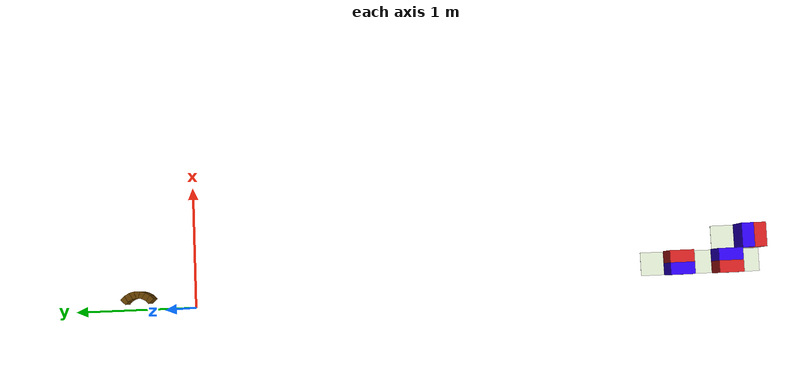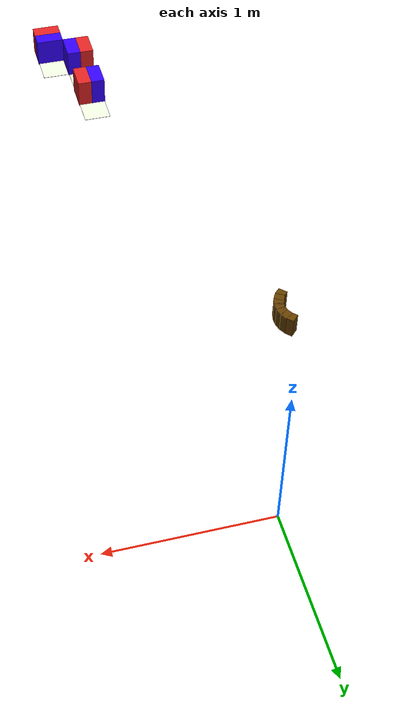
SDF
<sdf version="1.9">
 <world name="robocon_2027">
  <model name="robocon_2027_field">
   <static>true</static>
   <link name="sky_grid_0_3">
    <pose>0.200000 -4.625000 0.006000 0.000000 0.000000 0.000000</pose>
    <visual name="visual">
     <geometry><box><size>0.192000 0.192000 0.002000</size></box></geometry>
     <cast_shadows>false</cast_shadows>
     <material>
      <ambient>0.921569 0.960784 0.862745 1</ambient>
      <diffuse>0.921569 0.960784 0.862745 1</diffuse>
      <specular>0.08 0.08 0.08 1</specular>
      <double_sided>true</double_sided>
     </material>
    </visual>
   </link>
   <link name="sky_grid_0_4">
    <pose>0.400000 -4.625000 0.006000 0.000000 0.000000 0.000000</pose>
    <visual name="visual">
     <geometry><box><size>0.192000 0.192000 0.002000</size></box></geometry>
     <cast_shadows>false</cast_shadows>
     <material>
      <ambient>0.803922 0.901961 0.745098 1</ambient>
      <diffuse>0.803922 0.901961 0.745098 1</diffuse>
      <specular>0.08 0.08 0.08 1</specular>
      <double_sided>true</double_sided>
     </material>
    </visual>
   </link>
   <link name="sky_grid_1_3">
    <pose>0.200000 -4.425000 0.006000 0.000000 0.000000 0.000000</pose>
    <visual name="visual">
     <geometry><box><size>0.192000 0.192000 0.002000</size></box></geometry>
     <cast_shadows>false</cast_shadows>
     <material>
      <ambient>0.803922 0.901961 0.745098 1</ambient>
      <diffuse>0.803922 0.901961 0.745098 1</diffuse>
      <specular>0.08 0.08 0.08 1</specular>
      <double_sided>true</double_sided>
     </material>
    </visual>
   </link>
   <link name="sky_grid_1_4">
    <pose>0.400000 -4.425000 0.006000 0.000000 0.000000 0.000000</pose>
    <visual name="visual">
     <geometry><box><size>0.192000 0.192000 0.002000</size></box></geometry>
     <cast_shadows>false</cast_shadows>
     <material>
      <ambient>0.921569 0.960784 0.862745 1</ambient>
      <diffuse>0.921569 0.960784 0.862745 1</diffuse>
      <specular>0.08 0.08 0.08 1</specular>
      <double_sided>true</double_sided>
     </material>
    </visual>
   </link>
   <link name="sky_grid_2_3">
    <pose>0.200000 -4.225000 0.006000 0.000000 0.000000 0.000000</pose>
    <visual name="visual">
     <geometry><box><size>0.192000 0.192000 0.002000</size></box></geometry>
     <cast_shadows>false</cast_shadows>
     <material>
      <ambient>0.921569 0.960784 0.862745 1</ambient>
      <diffuse>0.921569 0.960784 0.862745 1</diffuse>
      <specular>0.08 0.08 0.08 1</specular>
      <double_sided>true</double_sided>
     </material>
    </visual>
   </link>
   <link name="sky_grid_3_3">
    <pose>0.200000 -4.025000 0.006000 0.000000 0.000000 0.000000</pose>
    <visual name="visual">
     <geometry><box><size>0.192000 0.192000 0.002000</size></box></geometry>
     <cast_shadows>false</cast_shadows>
     <material>
      <ambient>0.803922 0.901961 0.745098 1</ambient>
      <diffuse>0.803922 0.901961 0.745098 1</diffuse>
      <specular>0.08 0.08 0.08 1</specular>
      <double_sided>true</double_sided>
     </material>
    </visual>
   </link>
   <link name="sky_grid_4_3">
    <pose>0.200000 -3.825000 0.006000 0.000000 0.000000 0.000000</pose>
    <visual name="visual">
     <geometry><box><size>0.192000 0.192000 0.002000</size></box></geometry>
     <cast_shadows>false</cast_shadows>
     <material>
      <ambient>0.921569 0.960784 0.862745 1</ambient>
      <diffuse>0.921569 0.960784 0.862745 1</diffuse>
      <specular>0.08 0.08 0.08 1</specular>
      <double_sided>true</double_sided>
     </material>
    </visual>
   </link>
   <link name="central_pillar_cup_ring_00">
    <pose>0.112500 0.000000 1.650000 0.000000 0.000000 0.000000</pose>
    <collision name="collision">
     <geometry><box><size>0.045000 0.035343 0.100000</size></box></geometry>
    </collision>
    <visual name="visual">
     <geometry><box><size>0.045000 0.035343 0.100000</size></box></geometry>
     <material>
      <ambient>0.392157 0.243137 0.000000 1</ambient>
      <diffuse>0.392157 0.243137 0.000000 1</diffuse>
      <specular>0.08 0.08 0.08 1</specular>
      <double_sided>true</double_sided>
     </material>
    </visual>
   </link>
   <link name="central_pillar_cup_ring_01">
    <pose>0.108667 0.029117 1.650000 0.000000 0.000000 0.261799</pose>
    <collision name="collision">
     <geometry><box><size>0.045000 0.035343 0.100000</size></box></geometry>
    </collision>
    <visual name="visual">
     <geometry><box><size>0.045000 0.035343 0.100000</size></box></geometry>
     <material>
      <ambient>0.392157 0.243137 0.000000 1</ambient>
      <diffuse>0.392157 0.243137 0.000000 1</diffuse>
      <specular>0.08 0.08 0.08 1</specular>
      <double_sided>true</double_sided>
     </material>
    </visual>
   </link>
   <link name="central_pillar_cup_ring_02">
    <pose>0.097428 0.056250 1.650000 0.000000 0.000000 0.523599</pose>
    <collision name="collision">
     <geometry><box><size>0.045000 0.035343 0.100000</size></box></geometry>
    </collision>
    <visual name="visual">
     <geometry><box><size>0.045000 0.035343 0.100000</size></box></geometry>
     <material>
      <ambient>0.392157 0.243137 0.000000 1</ambient>
      <diffuse>0.392157 0.243137 0.000000 1</diffuse>
      <specular>0.08 0.08 0.08 1</specular>
      <double_sided>true</double_sided>
     </material>
    </visual>
   </link>
   <link name="central_pillar_cup_ring_03">
    <pose>0.079550 0.079550 1.650000 0.000000 0.000000 0.785398</pose>
    <collision name="collision">
     <geometry><box><size>0.045000 0.035343 0.100000</size></box></geometry>
    </collision>
    <visual name="visual">
     <geometry><box><size>0.045000 0.035343 0.100000</size></box></geometry>
     <material>
      <ambient>0.392157 0.243137 0.000000 1</ambient>
      <diffuse>0.392157 0.243137 0.000000 1</diffuse>
      <specular>0.08 0.08 0.08 1</specular>
      <double_sided>true</double_sided>
     </material>
    </visual>
   </link>
   <link name="central_pillar_cup_ring_21">
    <pose>0.079550 -0.079550 1.650000 0.000000 0.000000 5.497787</pose>
    <collision name="collision">
     <geometry><box><size>0.045000 0.035343 0.100000</size></box></geometry>
    </collision>
    <visual name="visual">
     <geometry><box><size>0.045000 0.035343 0.100000</size></box></geometry>
     <material>
      <ambient>0.392157 0.243137 0.000000 1</ambient>
      <diffuse>0.392157 0.243137 0.000000 1</diffuse>
      <specular>0.08 0.08 0.08 1</specular>
      <double_sided>true</double_sided>
     </material>
    </visual>
   </link>
   <link name="central_pillar_cup_ring_22">
    <pose>0.097428 -0.056250 1.650000 0.000000 0.000000 5.759587</pose>
    <collision name="collision">
     <geometry><box><size>0.045000 0.035343 0.100000</size></box></geometry>
    </collision>
    <visual name="visual">
     <geometry><box><size>0.045000 0.035343 0.100000</size></box></geometry>
     <material>
      <ambient>0.392157 0.243137 0.000000 1</ambient>
      <diffuse>0.392157 0.243137 0.000000 1</diffuse>
      <specular>0.08 0.08 0.08 1</specular>
      <double_sided>true</double_sided>
     </material>
    </visual>
   </link>
   <link name="central_pillar_cup_ring_23">
    <pose>0.108667 -0.029117 1.650000 0.000000 0.000000 6.021386</pose>
    <collision name="collision">
     <geometry><box><size>0.045000 0.035343 0.100000</size></box></geometry>
    </collision>
    <visual name="visual">
     <geometry><box><size>0.045000 0.035343 0.100000</size></box></geometry>
     <material>
      <ambient>0.392157 0.243137 0.000000 1</ambient>
      <diffuse>0.392157 0.243137 0.000000 1</diffuse>
      <specular>0.08 0.08 0.08 1</specular>
      <double_sided>true</double_sided>
     </material>
    </visual>
   </link>
  </model>
  <model name="sky_block_05">
   <pose>0.200000 -4.025000 0.100000 0.000000 0.000000 0.000000</pose>
   <link name="sky_block_05_link">
    <inertial>
     <mass>0.115000</mass>
     <inertia>
      <ixx>0.00076667</ixx>
      <iyy>0.00076667</iyy>
      <izz>0.00076667</izz>
      <ixy>0.00000000</ixy>
      <ixz>0.00000000</ixz>
      <iyz>0.00000000</iyz>
     </inertia>
    </inertial>
    <collision name="collision">
     <geometry><box><size>0.200000 0.200000 0.200000</size></box></geometry>
     <surface><friction><ode><mu>0.80</mu><mu2>0.80</mu2></ode></friction></surface>
    </collision>
    <visual name="red_half">
     <pose>0.050000 0.000000 0.000000 0.000000 0.000000 0.000000</pose>
     <geometry><box><size>0.100000 0.200000 0.200000</size></box></geometry>
     <material>
      <ambient>0.874510 0.133333 0.133333 1</ambient>
      <diffuse>0.874510 0.133333 0.133333 1</diffuse>
      <specular>0.08 0.08 0.08 1</specular>
      <double_sided>true</double_sided>
     </material>
    </visual>
    <visual name="blue_half">
     <pose>-0.050000 0.000000 0.000000 0.000000 0.000000 0.000000</pose>
     <geometry><box><size>0.100000 0.200000 0.200000</size></box></geometry>
     <material>
      <ambient>0.196078 0.000000 1.000000 1</ambient>
      <diffuse>0.196078 0.000000 1.000000 1</diffuse>
      <specular>0.08 0.08 0.08 1</specular>
      <double_sided>true</double_sided>
     </material>
    </visual>
   </link>
  </model>
  <model name="sky_block_09">
   <pose>0.200000 -4.425000 0.100000 0.000000 0.000000 3.141593</pose>
   <link name="sky_block_09_link">
    <inertial>
     <mass>0.115000</mass>
     <inertia>
      <ixx>0.00076667</ixx>
      <iyy>0.00076667</iyy>
      <izz>0.00076667</izz>
      <ixy>0.00000000</ixy>
      <ixz>0.00000000</ixz>
      <iyz>0.00000000</iyz>
     </inertia>
    </inertial>
    <collision name="collision">
     <geometry><box><size>0.200000 0.200000 0.200000</size></box></geometry>
     <surface><friction><ode><mu>0.80</mu><mu2>0.80</mu2></ode></friction></surface>
    </collision>
    <visual name="red_half">
     <pose>0.050000 0.000000 0.000000 0.000000 0.000000 0.000000</pose>
     <geometry><box><size>0.100000 0.200000 0.200000</size></box></geometry>
     <material>
      <ambient>0.874510 0.133333 0.133333 1</ambient>
      <diffuse>0.874510 0.133333 0.133333 1</diffuse>
      <specular>0.08 0.08 0.08 1</specular>
      <double_sided>true</double_sided>
     </material>
    </visual>
    <visual name="blue_half">
     <pose>-0.050000 0.000000 0.000000 0.000000 0.000000 0.000000</pose>
     <geometry><box><size>0.100000 0.200000 0.200000</size></box></geometry>
     <material>
      <ambient>0.196078 0.000000 1.000000 1</ambient>
      <diffuse>0.196078 0.000000 1.000000 1</diffuse>
      <specular>0.08 0.08 0.08 1</specular>
      <double_sided>true</double_sided>
     </material>
    </visual>
   </link>
  </model>
  <model name="sky_block_12">
   <pose>0.400000 -4.625000 0.100000 0.000000 0.000000 -1.570796</pose>
   <link name="sky_block_12_link">
    <inertial>
     <mass>0.115000</mass>
     <inertia>
      <ixx>0.00076667</ixx>
      <iyy>0.00076667</iyy>
      <izz>0.00076667</izz>
      <ixy>0.00000000</ixy>
      <ixz>0.00000000</ixz>
      <iyz>0.00000000</iyz>
     </inertia>
    </inertial>
    <collision name="collision">
     <geometry><box><size>0.200000 0.200000 0.200000</size></box></geometry>
     <surface><friction><ode><mu>0.80</mu><mu2>0.80</mu2></ode></friction></surface>
    </collision>
    <visual name="red_half">
     <pose>0.050000 0.000000 0.000000 0.000000 0.000000 0.000000</pose>
     <geometry><box><size>0.100000 0.200000 0.200000</size></box></geometry>
     <material>
      <ambient>0.874510 0.133333 0.133333 1</ambient>
      <diffuse>0.874510 0.133333 0.133333 1</diffuse>
      <specular>0.08 0.08 0.08 1</specular>
      <double_sided>true</double_sided>
     </material>
    </visual>
    <visual name="blue_half">
     <pose>-0.050000 0.000000 0.000000 0.000000 0.000000 0.000000</pose>
     <geometry><box><size>0.100000 0.200000 0.200000</size></box></geometry>
     <material>
      <ambient>0.196078 0.000000 1.000000 1</ambient>
      <diffuse>0.196078 0.000000 1.000000 1</diffuse>
      <specular>0.08 0.08 0.08 1</specular>
      <double_sided>true</double_sided>
     </material>
    </visual>
   </link>
  </model>
 </world>
</sdf>
